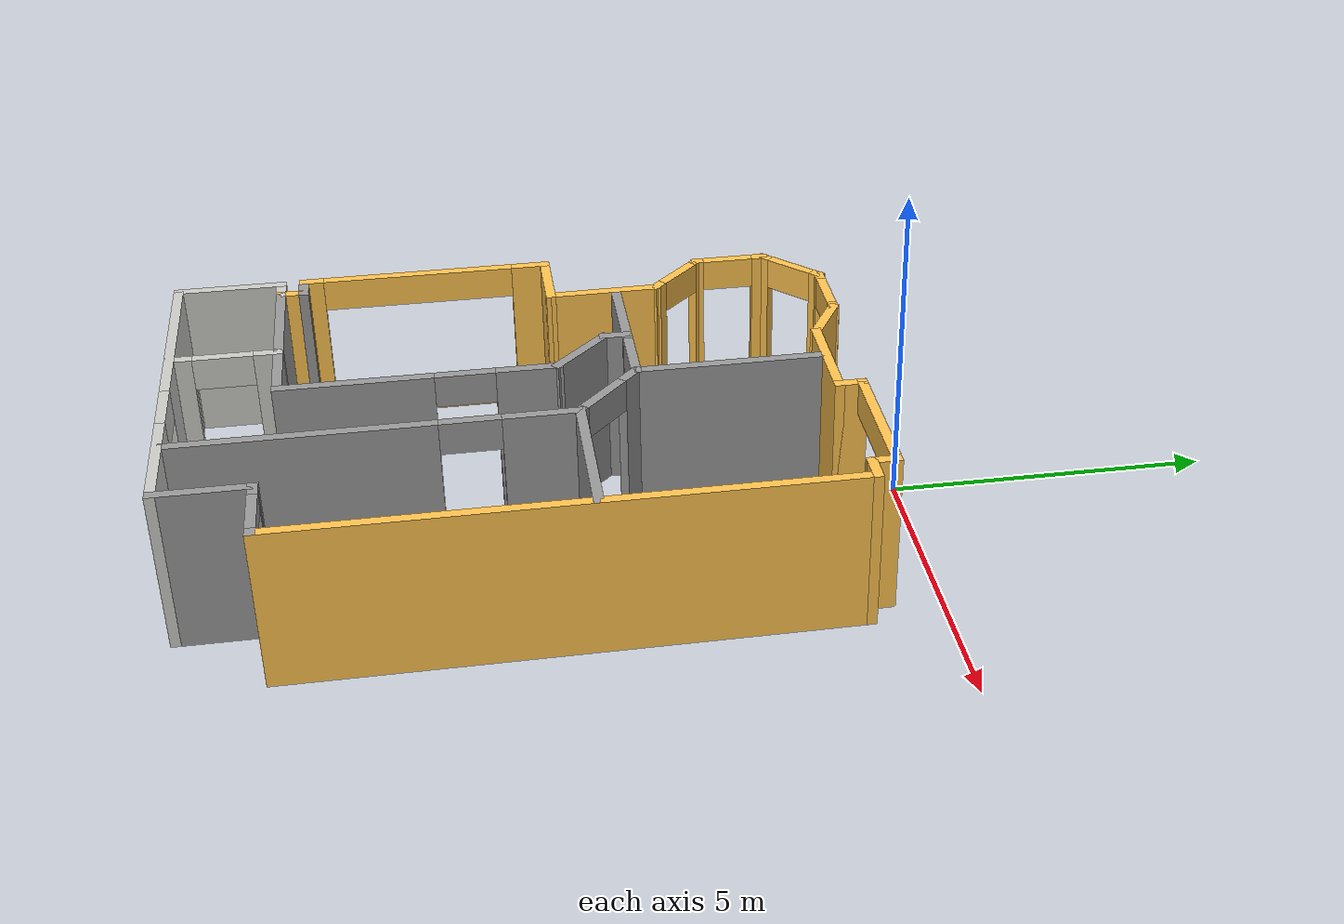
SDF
<?xml version='1.0'?>
<sdf version='1.6'>
  <model name='Building'>
    <pose frame=''>-0.265 -5.74197 0 0 -0 0</pose>
    <link name='Wall_0'>
      <pose frame=''>-0.54 -5.07803 0 0 -0 0</pose>
      <visual name='Wall_0_Visual_0'>
        <pose frame=''>-1.40972 0 1.25 0 -0 0</pose>
        <geometry>
          <box>
            <size>3.18055 0.15 2.5</size>
          </box>
        </geometry>
        <material>
          <script>
            <uri>file://media/materials/scripts/gazebo.material</uri>
            <name>Gazebo/CeilingTiled</name>
          </script>
          <ambient>1 1 1 1</ambient>
        </material>
        <meta>
          <layer>0</layer>
        </meta>
      </visual>
      <collision name='Wall_0_Collision_0'>
        <geometry>
          <box>
            <size>3.18055 0.15 2.5</size>
          </box>
        </geometry>
        <pose frame=''>-1.40972 0 1.25 0 -0 0</pose>
      </collision>
      <visual name='Wall_0_Visual_1'>
        <pose frame=''>2.04028 0 1.25 0 -0 0</pose>
        <geometry>
          <box>
            <size>1.91945 0.15 2.5</size>
          </box>
        </geometry>
        <material>
          <script>
            <uri>file://media/materials/scripts/gazebo.material</uri>
            <name>Gazebo/CeilingTiled</name>
          </script>
          <ambient>1 1 1 1</ambient>
        </material>
        <meta>
          <layer>0</layer>
        </meta>
      </visual>
      <collision name='Wall_0_Collision_1'>
        <geometry>
          <box>
            <size>1.91945 0.15 2.5</size>
          </box>
        </geometry>
        <pose frame=''>2.04028 0 1.25 0 -0 0</pose>
      </collision>
      <visual name='Wall_0_Visual_2'>
        <pose frame=''>0.630554 0 2.25 0 -0 0</pose>
        <geometry>
          <box>
            <size>0.9 0.15 0.5</size>
          </box>
        </geometry>
        <material>
          <script>
            <uri>file://media/materials/scripts/gazebo.material</uri>
            <name>Gazebo/CeilingTiled</name>
          </script>
          <ambient>1 1 1 1</ambient>
        </material>
        <meta>
          <layer>0</layer>
        </meta>
      </visual>
      <collision name='Wall_0_Collision_2'>
        <geometry>
          <box>
            <size>0.9 0.15 0.5</size>
          </box>
        </geometry>
        <pose frame=''>0.630554 0 2.25 0 -0 0</pose>
      </collision>
    </link>
    <link name='Wall_1'>
      <collision name='Wall_1_Collision'>
        <geometry>
          <box>
            <size>1.5 0.15 2.5</size>
          </box>
        </geometry>
        <pose frame=''>0 0 1.25 0 -0 0</pose>
      </collision>
      <visual name='Wall_1_Visual'>
        <pose frame=''>0 0 1.25 0 -0 0</pose>
        <geometry>
          <box>
            <size>1.5 0.15 2.5</size>
          </box>
        </geometry>
        <material>
          <script>
            <uri>file://media/materials/scripts/gazebo.material</uri>
            <name>Gazebo/Grey</name>
          </script>
          <ambient>1 1 1 1</ambient>
        </material>
        <meta>
          <layer>0</layer>
        </meta>
      </visual>
      <pose frame=''>2.385 -4.40303 0 0 -0 1.5708</pose>
    </link>
    <link name='Wall_10'>
      <pose frame=''>-1.85112 5.04697 0 0 -0 3.14159</pose>
      <visual name='Wall_10_Visual_0'>
        <pose frame=''>-0.517736 0 1.25 0 -0 0</pose>
        <geometry>
          <box>
            <size>0.214528 0.15 2.5</size>
          </box>
        </geometry>
        <material>
          <script>
            <uri>file://media/materials/scripts/gazebo.material</uri>
            <name>Gazebo/Grey</name>
          </script>
          <ambient>1 0.764706 0.305882 1</ambient>
        </material>
        <meta>
          <layer>0</layer>
        </meta>
      </visual>
      <collision name='Wall_10_Collision_0'>
        <geometry>
          <box>
            <size>0.214528 0.15 2.5</size>
          </box>
        </geometry>
        <pose frame=''>-0.517736 0 1.25 0 -0 0</pose>
      </collision>
      <visual name='Wall_10_Visual_1'>
        <pose frame=''>0.107264 0 0.25 0 -0 0</pose>
        <geometry>
          <box>
            <size>1.03547 0.15 0.5</size>
          </box>
        </geometry>
        <material>
          <script>
            <uri>file://media/materials/scripts/gazebo.material</uri>
            <name>Gazebo/Grey</name>
          </script>
          <ambient>1 0.764706 0.305882 1</ambient>
        </material>
        <meta>
          <layer>0</layer>
        </meta>
      </visual>
      <collision name='Wall_10_Collision_1'>
        <geometry>
          <box>
            <size>1.03547 0.15 0.5</size>
          </box>
        </geometry>
        <pose frame=''>0.107264 0 0.25 0 -0 0</pose>
      </collision>
      <visual name='Wall_10_Visual_2'>
        <pose frame=''>0.507264 0 1.5 0 -0 0</pose>
        <geometry>
          <box>
            <size>0.235472 0.15 2</size>
          </box>
        </geometry>
        <material>
          <script>
            <uri>file://media/materials/scripts/gazebo.material</uri>
            <name>Gazebo/Grey</name>
          </script>
          <ambient>1 0.764706 0.305882 1</ambient>
        </material>
        <meta>
          <layer>0</layer>
        </meta>
      </visual>
      <collision name='Wall_10_Collision_2'>
        <geometry>
          <box>
            <size>0.235472 0.15 2</size>
          </box>
        </geometry>
        <pose frame=''>0.507264 0 1.5 0 -0 0</pose>
      </collision>
      <visual name='Wall_10_Visual_3'>
        <pose frame=''>-0.010472 0 2.25 0 -0 0</pose>
        <geometry>
          <box>
            <size>0.8 0.15 0.5</size>
          </box>
        </geometry>
        <material>
          <script>
            <uri>file://media/materials/scripts/gazebo.material</uri>
            <name>Gazebo/Grey</name>
          </script>
          <ambient>1 0.764706 0.305882 1</ambient>
        </material>
        <meta>
          <layer>0</layer>
        </meta>
      </visual>
      <collision name='Wall_10_Collision_3'>
        <geometry>
          <box>
            <size>0.8 0.15 0.5</size>
          </box>
        </geometry>
        <pose frame=''>-0.010472 0 2.25 0 -0 0</pose>
      </collision>
    </link>
    <link name='Wall_11'>
      <pose frame=''>-2.79003 4.65806 0 0 0 -2.35619</pose>
      <visual name='Wall_11_Visual_0'>
        <pose frame=''>-0.516833 0 1.25 0 -0 0</pose>
        <geometry>
          <box>
            <size>0.216334 0.15 2.5</size>
          </box>
        </geometry>
        <material>
          <script>
            <uri>file://media/materials/scripts/gazebo.material</uri>
            <name>Gazebo/Grey</name>
          </script>
          <ambient>1 0.764706 0.305882 1</ambient>
        </material>
        <meta>
          <layer>0</layer>
        </meta>
      </visual>
      <collision name='Wall_11_Collision_0'>
        <geometry>
          <box>
            <size>0.216334 0.15 2.5</size>
          </box>
        </geometry>
        <pose frame=''>-0.516833 0 1.25 0 -0 0</pose>
      </collision>
      <visual name='Wall_11_Visual_1'>
        <pose frame=''>0.108167 0 0.25 0 -0 0</pose>
        <geometry>
          <box>
            <size>1.03367 0.15 0.5</size>
          </box>
        </geometry>
        <material>
          <script>
            <uri>file://media/materials/scripts/gazebo.material</uri>
            <name>Gazebo/Grey</name>
          </script>
          <ambient>1 0.764706 0.305882 1</ambient>
        </material>
        <meta>
          <layer>0</layer>
        </meta>
      </visual>
      <collision name='Wall_11_Collision_1'>
        <geometry>
          <box>
            <size>1.03367 0.15 0.5</size>
          </box>
        </geometry>
        <pose frame=''>0.108167 0 0.25 0 -0 0</pose>
      </collision>
      <visual name='Wall_11_Visual_2'>
        <pose frame=''>0.508167 0 1.5 0 -0 0</pose>
        <geometry>
          <box>
            <size>0.233666 0.15 2</size>
          </box>
        </geometry>
        <material>
          <script>
            <uri>file://media/materials/scripts/gazebo.material</uri>
            <name>Gazebo/Grey</name>
          </script>
          <ambient>1 0.764706 0.305882 1</ambient>
        </material>
        <meta>
          <layer>0</layer>
        </meta>
      </visual>
      <collision name='Wall_11_Collision_2'>
        <geometry>
          <box>
            <size>0.233666 0.15 2</size>
          </box>
        </geometry>
        <pose frame=''>0.508167 0 1.5 0 -0 0</pose>
      </collision>
      <visual name='Wall_11_Visual_3'>
        <pose frame=''>-0.008666 0 2.25 0 -0 0</pose>
        <geometry>
          <box>
            <size>0.8 0.15 0.5</size>
          </box>
        </geometry>
        <material>
          <script>
            <uri>file://media/materials/scripts/gazebo.material</uri>
            <name>Gazebo/Grey</name>
          </script>
          <ambient>1 0.764706 0.305882 1</ambient>
        </material>
        <meta>
          <layer>0</layer>
        </meta>
      </visual>
      <collision name='Wall_11_Collision_3'>
        <geometry>
          <box>
            <size>0.8 0.15 0.5</size>
          </box>
        </geometry>
        <pose frame=''>-0.008666 0 2.25 0 -0 0</pose>
      </collision>
    </link>
    <link name='Wall_12'>
      <pose frame=''>-3.17894 3.71915 0 0 0 -1.5708</pose>
      <visual name='Wall_12_Visual_0'>
        <pose frame=''>-0.493695 0 1.25 0 -0 0</pose>
        <geometry>
          <box>
            <size>0.262609 0.15 2.5</size>
          </box>
        </geometry>
        <material>
          <script>
            <uri>file://media/materials/scripts/gazebo.material</uri>
            <name>Gazebo/Grey</name>
          </script>
          <ambient>1 0.764706 0.305882 1</ambient>
        </material>
        <meta>
          <layer>0</layer>
        </meta>
      </visual>
      <collision name='Wall_12_Collision_0'>
        <geometry>
          <box>
            <size>0.262609 0.15 2.5</size>
          </box>
        </geometry>
        <pose frame=''>-0.493695 0 1.25 0 -0 0</pose>
      </collision>
      <visual name='Wall_12_Visual_1'>
        <pose frame=''>0.131305 0 0.25 0 -0 0</pose>
        <geometry>
          <box>
            <size>0.987391 0.15 0.5</size>
          </box>
        </geometry>
        <material>
          <script>
            <uri>file://media/materials/scripts/gazebo.material</uri>
            <name>Gazebo/Grey</name>
          </script>
          <ambient>1 0.764706 0.305882 1</ambient>
        </material>
        <meta>
          <layer>0</layer>
        </meta>
      </visual>
      <collision name='Wall_12_Collision_1'>
        <geometry>
          <box>
            <size>0.987391 0.15 0.5</size>
          </box>
        </geometry>
        <pose frame=''>0.131305 0 0.25 0 -0 0</pose>
      </collision>
      <visual name='Wall_12_Visual_2'>
        <pose frame=''>0.531305 0 1.5 0 -0 0</pose>
        <geometry>
          <box>
            <size>0.187391 0.15 2</size>
          </box>
        </geometry>
        <material>
          <script>
            <uri>file://media/materials/scripts/gazebo.material</uri>
            <name>Gazebo/Grey</name>
          </script>
          <ambient>1 0.764706 0.305882 1</ambient>
        </material>
        <meta>
          <layer>0</layer>
        </meta>
      </visual>
      <collision name='Wall_12_Collision_2'>
        <geometry>
          <box>
            <size>0.187391 0.15 2</size>
          </box>
        </geometry>
        <pose frame=''>0.531305 0 1.5 0 -0 0</pose>
      </collision>
      <visual name='Wall_12_Visual_3'>
        <pose frame=''>0.037609 0 2.25 0 -0 0</pose>
        <geometry>
          <box>
            <size>0.8 0.15 0.5</size>
          </box>
        </geometry>
        <material>
          <script>
            <uri>file://media/materials/scripts/gazebo.material</uri>
            <name>Gazebo/Grey</name>
          </script>
          <ambient>1 0.764706 0.305882 1</ambient>
        </material>
        <meta>
          <layer>0</layer>
        </meta>
      </visual>
      <collision name='Wall_12_Collision_3'>
        <geometry>
          <box>
            <size>0.8 0.15 0.5</size>
          </box>
        </geometry>
        <pose frame=''>0.037609 0 2.25 0 -0 0</pose>
      </collision>
    </link>
    <link name='Wall_13'>
      <pose frame=''>-2.79003 2.78024 0 0 0 -0.785398</pose>
      <visual name='Wall_13_Visual_0'>
        <pose frame=''>-0.532603 0 1.25 0 -0 0</pose>
        <geometry>
          <box>
            <size>0.184794 0.15 2.5</size>
          </box>
        </geometry>
        <material>
          <script>
            <uri>file://media/materials/scripts/gazebo.material</uri>
            <name>Gazebo/Grey</name>
          </script>
          <ambient>1 0.764706 0.305882 1</ambient>
        </material>
        <meta>
          <layer>0</layer>
        </meta>
      </visual>
      <collision name='Wall_13_Collision_0'>
        <geometry>
          <box>
            <size>0.184794 0.15 2.5</size>
          </box>
        </geometry>
        <pose frame=''>-0.532603 0 1.25 0 -0 0</pose>
      </collision>
      <visual name='Wall_13_Visual_1'>
        <pose frame=''>0.092397 0 0.25 0 -0 0</pose>
        <geometry>
          <box>
            <size>1.06521 0.15 0.5</size>
          </box>
        </geometry>
        <material>
          <script>
            <uri>file://media/materials/scripts/gazebo.material</uri>
            <name>Gazebo/Grey</name>
          </script>
          <ambient>1 0.764706 0.305882 1</ambient>
        </material>
        <meta>
          <layer>0</layer>
        </meta>
      </visual>
      <collision name='Wall_13_Collision_1'>
        <geometry>
          <box>
            <size>1.06521 0.15 0.5</size>
          </box>
        </geometry>
        <pose frame=''>0.092397 0 0.25 0 -0 0</pose>
      </collision>
      <visual name='Wall_13_Visual_2'>
        <pose frame=''>0.492397 0 1.5 0 -0 0</pose>
        <geometry>
          <box>
            <size>0.265206 0.15 2</size>
          </box>
        </geometry>
        <material>
          <script>
            <uri>file://media/materials/scripts/gazebo.material</uri>
            <name>Gazebo/Grey</name>
          </script>
          <ambient>1 0.764706 0.305882 1</ambient>
        </material>
        <meta>
          <layer>0</layer>
        </meta>
      </visual>
      <collision name='Wall_13_Collision_2'>
        <geometry>
          <box>
            <size>0.265206 0.15 2</size>
          </box>
        </geometry>
        <pose frame=''>0.492397 0 1.5 0 -0 0</pose>
      </collision>
      <visual name='Wall_13_Visual_3'>
        <pose frame=''>-0.040206 0 2.25 0 -0 0</pose>
        <geometry>
          <box>
            <size>0.8 0.15 0.5</size>
          </box>
        </geometry>
        <material>
          <script>
            <uri>file://media/materials/scripts/gazebo.material</uri>
            <name>Gazebo/Grey</name>
          </script>
          <ambient>1 0.764706 0.305882 1</ambient>
        </material>
        <meta>
          <layer>0</layer>
        </meta>
      </visual>
      <collision name='Wall_13_Collision_3'>
        <geometry>
          <box>
            <size>0.8 0.15 0.5</size>
          </box>
        </geometry>
        <pose frame=''>-0.040206 0 2.25 0 -0 0</pose>
      </collision>
    </link>
    <link name='Wall_14'>
      <collision name='Wall_14_Collision'>
        <geometry>
          <box>
            <size>1.81944 0.15 2.5</size>
          </box>
        </geometry>
        <pose frame=''>0 0 1.25 0 -0 0</pose>
      </collision>
      <visual name='Wall_14_Visual'>
        <pose frame=''>0 0 1.25 0 -0 0</pose>
        <geometry>
          <box>
            <size>1.81944 0.15 2.5</size>
          </box>
        </geometry>
        <material>
          <script>
            <uri>file://media/materials/scripts/gazebo.material</uri>
            <name>Gazebo/Grey</name>
          </script>
          <ambient>1 0.764706 0.305882 1</ambient>
        </material>
        <meta>
          <layer>0</layer>
        </meta>
      </visual>
      <pose frame=''>-2.39306 1.55665 0 0 0 -1.56114</pose>
    </link>
    <link name='Wall_16'>
      <collision name='Wall_16_Collision'>
        <geometry>
          <box>
            <size>1.75 0.15 2.5</size>
          </box>
        </geometry>
        <pose frame=''>0 0 1.25 0 -0 0</pose>
      </collision>
      <visual name='Wall_16_Visual'>
        <pose frame=''>0 0 1.25 0 -0 0</pose>
        <geometry>
          <box>
            <size>1.75 0.15 2.5</size>
          </box>
        </geometry>
        <material>
          <script>
            <uri>file://media/materials/scripts/gazebo.material</uri>
            <name>Gazebo/CeilingTiled</name>
          </script>
          <ambient>1 0.764706 0.305882 1</ambient>
        </material>
        <meta>
          <layer>0</layer>
        </meta>
      </visual>
      <pose frame=''>-3.465 -4.27803 0 0 -0 1.5708</pose>
    </link>
    <link name='Wall_17'>
      <collision name='Wall_17_Collision'>
        <geometry>
          <box>
            <size>0.5 0.15 2.5</size>
          </box>
        </geometry>
        <pose frame=''>0 0 1.25 0 -0 0</pose>
      </collision>
      <visual name='Wall_17_Visual'>
        <pose frame=''>0 0 1.25 0 -0 0</pose>
        <geometry>
          <box>
            <size>0.5 0.15 2.5</size>
          </box>
        </geometry>
        <material>
          <script>
            <uri>file://media/materials/scripts/gazebo.material</uri>
            <name>Gazebo/CeilingTiled</name>
          </script>
          <ambient>1 0.764706 0.305882 1</ambient>
        </material>
        <meta>
          <layer>0</layer>
        </meta>
      </visual>
      <pose frame=''>-3.29 -3.47803 0 0 -0 0</pose>
    </link>
    <link name='Wall_18'>
      <collision name='Wall_18_Collision'>
        <geometry>
          <box>
            <size>0.5 0.15 2.5</size>
          </box>
        </geometry>
        <pose frame=''>0 0 1.25 0 -0 0</pose>
      </collision>
      <visual name='Wall_18_Visual'>
        <pose frame=''>0 0 1.25 0 -0 0</pose>
        <geometry>
          <box>
            <size>0.5 0.15 2.5</size>
          </box>
        </geometry>
        <material>
          <script>
            <uri>file://media/materials/scripts/gazebo.material</uri>
            <name>Gazebo/Grey</name>
          </script>
          <ambient>1 0.764706 0.305882 1</ambient>
        </material>
        <meta>
          <layer>0</layer>
        </meta>
      </visual>
      <pose frame=''>-3.115 -3.30303 0 0 -0 1.5708</pose>
    </link>
    <link name='Wall_19'>
      <collision name='Wall_19_Collision'>
        <geometry>
          <box>
            <size>0.5 0.15 2.5</size>
          </box>
        </geometry>
        <pose frame=''>0 0 1.25 0 -0 0</pose>
      </collision>
      <visual name='Wall_19_Visual'>
        <pose frame=''>0 0 1.25 0 -0 0</pose>
        <geometry>
          <box>
            <size>0.5 0.15 2.5</size>
          </box>
        </geometry>
        <material>
          <script>
            <uri>file://media/materials/scripts/gazebo.material</uri>
            <name>Gazebo/Grey</name>
          </script>
          <ambient>1 1 1 1</ambient>
        </material>
        <meta>
          <layer>0</layer>
        </meta>
      </visual>
      <pose frame=''>-3.29 -3.12803 0 0 -0 3.14159</pose>
    </link>
    <link name='Wall_2'>
      <pose frame=''>2.935 -3.72803 0 0 -0 0</pose>
      <visual name='Wall_2_Visual_0'>
        <pose frame=''>-0.486696 0 1.25 0 -0 0</pose>
        <geometry>
          <box>
            <size>0.276608 0.15 2.5</size>
          </box>
        </geometry>
        <material>
          <script>
            <uri>file://media/materials/scripts/gazebo.material</uri>
            <name>Gazebo/Grey</name>
          </script>
          <ambient>1 1 1 1</ambient>
        </material>
        <meta>
          <layer>0</layer>
        </meta>
      </visual>
      <collision name='Wall_2_Collision_0'>
        <geometry>
          <box>
            <size>0.276608 0.15 2.5</size>
          </box>
        </geometry>
        <pose frame=''>-0.486696 0 1.25 0 -0 0</pose>
      </collision>
      <visual name='Wall_2_Visual_1'>
        <pose frame=''>0.138304 0 0.375 0 -0 0</pose>
        <geometry>
          <box>
            <size>0.973392 0.15 0.75</size>
          </box>
        </geometry>
        <material>
          <script>
            <uri>file://media/materials/scripts/gazebo.material</uri>
            <name>Gazebo/Grey</name>
          </script>
          <ambient>1 1 1 1</ambient>
        </material>
        <meta>
          <layer>0</layer>
        </meta>
      </visual>
      <collision name='Wall_2_Collision_1'>
        <geometry>
          <box>
            <size>0.973392 0.15 0.75</size>
          </box>
        </geometry>
        <pose frame=''>0.138304 0 0.375 0 -0 0</pose>
      </collision>
      <visual name='Wall_2_Visual_2'>
        <pose frame=''>0.538304 0 1.625 0 -0 0</pose>
        <geometry>
          <box>
            <size>0.173392 0.15 1.75</size>
          </box>
        </geometry>
        <material>
          <script>
            <uri>file://media/materials/scripts/gazebo.material</uri>
            <name>Gazebo/Grey</name>
          </script>
          <ambient>1 1 1 1</ambient>
        </material>
        <meta>
          <layer>0</layer>
        </meta>
      </visual>
      <collision name='Wall_2_Collision_2'>
        <geometry>
          <box>
            <size>0.173392 0.15 1.75</size>
          </box>
        </geometry>
        <pose frame=''>0.538304 0 1.625 0 -0 0</pose>
      </collision>
      <visual name='Wall_2_Visual_3'>
        <pose frame=''>0.051608 0 2.375 0 -0 0</pose>
        <geometry>
          <box>
            <size>0.8 0.15 0.25</size>
          </box>
        </geometry>
        <material>
          <script>
            <uri>file://media/materials/scripts/gazebo.material</uri>
            <name>Gazebo/Grey</name>
          </script>
          <ambient>1 1 1 1</ambient>
        </material>
        <meta>
          <layer>0</layer>
        </meta>
      </visual>
      <collision name='Wall_2_Collision_3'>
        <geometry>
          <box>
            <size>0.8 0.15 0.25</size>
          </box>
        </geometry>
        <pose frame=''>0.051608 0 2.375 0 -0 0</pose>
      </collision>
    </link>
    <link name='Wall_20'>
      <pose frame=''>-3.485 -1.20303 0 0 -0 1.5708</pose>
      <visual name='Wall_20_Visual_0'>
        <pose frame=''>-1.80879 0 1.25 0 -0 0</pose>
        <geometry>
          <box>
            <size>0.382416 0.15 2.5</size>
          </box>
        </geometry>
        <material>
          <script>
            <uri>file://media/materials/scripts/gazebo.material</uri>
            <name>Gazebo/Grey</name>
          </script>
          <ambient>1 0.764706 0.305882 1</ambient>
        </material>
        <meta>
          <layer>0</layer>
        </meta>
      </visual>
      <collision name='Wall_20_Collision_0'>
        <geometry>
          <box>
            <size>0.382416 0.15 2.5</size>
          </box>
        </geometry>
        <pose frame=''>-1.80879 0 1.25 0 -0 0</pose>
      </collision>
      <visual name='Wall_20_Visual_1'>
        <pose frame=''>0.191208 0 0.25 0 -0 0</pose>
        <geometry>
          <box>
            <size>3.61758 0.15 0.5</size>
          </box>
        </geometry>
        <material>
          <script>
            <uri>file://media/materials/scripts/gazebo.material</uri>
            <name>Gazebo/Grey</name>
          </script>
          <ambient>1 0.764706 0.305882 1</ambient>
        </material>
        <meta>
          <layer>0</layer>
        </meta>
      </visual>
      <collision name='Wall_20_Collision_1'>
        <geometry>
          <box>
            <size>3.61758 0.15 0.5</size>
          </box>
        </geometry>
        <pose frame=''>0.191208 0 0.25 0 -0 0</pose>
      </collision>
      <visual name='Wall_20_Visual_2'>
        <pose frame=''>1.69121 0 1.5 0 -0 0</pose>
        <geometry>
          <box>
            <size>0.617584 0.15 2</size>
          </box>
        </geometry>
        <material>
          <script>
            <uri>file://media/materials/scripts/gazebo.material</uri>
            <name>Gazebo/Grey</name>
          </script>
          <ambient>1 0.764706 0.305882 1</ambient>
        </material>
        <meta>
          <layer>0</layer>
        </meta>
      </visual>
      <collision name='Wall_20_Collision_2'>
        <geometry>
          <box>
            <size>0.617584 0.15 2</size>
          </box>
        </geometry>
        <pose frame=''>1.69121 0 1.5 0 -0 0</pose>
      </collision>
      <visual name='Wall_20_Visual_3'>
        <pose frame=''>-0.117584 0 2.25 0 -0 0</pose>
        <geometry>
          <box>
            <size>3 0.15 0.5</size>
          </box>
        </geometry>
        <material>
          <script>
            <uri>file://media/materials/scripts/gazebo.material</uri>
            <name>Gazebo/Grey</name>
          </script>
          <ambient>1 0.764706 0.305882 1</ambient>
        </material>
        <meta>
          <layer>0</layer>
        </meta>
      </visual>
      <collision name='Wall_20_Collision_3'>
        <geometry>
          <box>
            <size>3 0.15 0.5</size>
          </box>
        </geometry>
        <pose frame=''>-0.117584 0 2.25 0 -0 0</pose>
      </collision>
    </link>
    <link name='Wall_22'>
      <collision name='Wall_22_Collision'>
        <geometry>
          <box>
            <size>1.25 0.15 2.5</size>
          </box>
        </geometry>
        <pose frame=''>0 0 1.25 0 -0 0</pose>
      </collision>
      <visual name='Wall_22_Visual'>
        <pose frame=''>0 0 1.25 0 -0 0</pose>
        <geometry>
          <box>
            <size>1.25 0.15 2.5</size>
          </box>
        </geometry>
        <material>
          <script>
            <uri>file://media/materials/scripts/gazebo.material</uri>
            <name>Gazebo/Grey</name>
          </script>
          <ambient>1 0.764706 0.305882 1</ambient>
        </material>
        <meta>
          <layer>0</layer>
        </meta>
      </visual>
      <pose frame=''>-2.935 0.721967 0 0 -0 0</pose>
    </link>
    <link name='Wall_26'>
      <collision name='Wall_26_Collision'>
        <geometry>
          <box>
            <size>2 0.15 2.5</size>
          </box>
        </geometry>
        <pose frame=''>0 0 1.25 0 -0 0</pose>
      </collision>
      <visual name='Wall_26_Visual'>
        <pose frame=''>0 0 1.25 0 -0 0</pose>
        <geometry>
          <box>
            <size>2 0.15 2.5</size>
          </box>
        </geometry>
        <material>
          <script>
            <uri>file://media/materials/scripts/gazebo.material</uri>
            <name>Gazebo/Grey</name>
          </script>
          <ambient>1 1 1 1</ambient>
        </material>
        <meta>
          <layer>0</layer>
        </meta>
      </visual>
      <pose frame=''>-2.19 -3.47803 0 0 -0 0</pose>
    </link>
    <link name='Wall_27'>
      <pose frame=''>-1.265 -4.27803 0 0 0 -1.5708</pose>
      <visual name='Wall_27_Visual_0'>
        <pose frame=''>-0.653637 0 1.25 0 -0 0</pose>
        <geometry>
          <box>
            <size>0.442727 0.15 2.5</size>
          </box>
        </geometry>
        <material>
          <script>
            <uri>file://media/materials/scripts/gazebo.material</uri>
            <name>Gazebo/CeilingTiled</name>
          </script>
          <ambient>1 1 1 1</ambient>
        </material>
        <meta>
          <layer>0</layer>
        </meta>
      </visual>
      <collision name='Wall_27_Collision_0'>
        <geometry>
          <box>
            <size>0.442727 0.15 2.5</size>
          </box>
        </geometry>
        <pose frame=''>-0.653637 0 1.25 0 -0 0</pose>
      </collision>
      <visual name='Wall_27_Visual_1'>
        <pose frame=''>0.671363 0 1.25 0 -0 0</pose>
        <geometry>
          <box>
            <size>0.407273 0.15 2.5</size>
          </box>
        </geometry>
        <material>
          <script>
            <uri>file://media/materials/scripts/gazebo.material</uri>
            <name>Gazebo/CeilingTiled</name>
          </script>
          <ambient>1 1 1 1</ambient>
        </material>
        <meta>
          <layer>0</layer>
        </meta>
      </visual>
      <collision name='Wall_27_Collision_1'>
        <geometry>
          <box>
            <size>0.407273 0.15 2.5</size>
          </box>
        </geometry>
        <pose frame=''>0.671363 0 1.25 0 -0 0</pose>
      </collision>
      <visual name='Wall_27_Visual_2'>
        <pose frame=''>0.017727 0 2.25 0 -0 0</pose>
        <geometry>
          <box>
            <size>0.9 0.15 0.5</size>
          </box>
        </geometry>
        <material>
          <script>
            <uri>file://media/materials/scripts/gazebo.material</uri>
            <name>Gazebo/CeilingTiled</name>
          </script>
          <ambient>1 1 1 1</ambient>
        </material>
        <meta>
          <layer>0</layer>
        </meta>
      </visual>
      <collision name='Wall_27_Collision_2'>
        <geometry>
          <box>
            <size>0.9 0.15 0.5</size>
          </box>
        </geometry>
        <pose frame=''>0.017727 0 2.25 0 -0 0</pose>
      </collision>
    </link>
    <link name='Wall_29'>
      <collision name='Wall_29_Collision'>
        <geometry>
          <box>
            <size>1.25 0.15 2.5</size>
          </box>
        </geometry>
        <pose frame=''>0 0 1.25 0 -0 0</pose>
      </collision>
      <visual name='Wall_29_Visual'>
        <pose frame=''>0 0 1.25 0 -0 0</pose>
        <geometry>
          <box>
            <size>1.25 0.15 2.5</size>
          </box>
        </geometry>
        <material>
          <script>
            <uri>file://media/materials/scripts/gazebo.material</uri>
            <name>Gazebo/Grey</name>
          </script>
          <ambient>1 1 1 1</ambient>
        </material>
        <meta>
          <layer>0</layer>
        </meta>
      </visual>
      <pose frame=''>-0.715 -3.47803 0 0 -0 0</pose>
    </link>
    <link name='Wall_3'>
      <collision name='Wall_3_Collision'>
        <geometry>
          <box>
            <size>8.5 0.15 2.5</size>
          </box>
        </geometry>
        <pose frame=''>0 0 1.25 0 -0 0</pose>
      </collision>
      <visual name='Wall_3_Visual'>
        <pose frame=''>0 0 1.25 0 -0 0</pose>
        <geometry>
          <box>
            <size>8.5 0.15 2.5</size>
          </box>
        </geometry>
        <material>
          <script>
            <uri>file://media/materials/scripts/gazebo.material</uri>
            <name>Gazebo/Grey</name>
          </script>
          <ambient>1 0.764706 0.305882 1</ambient>
        </material>
        <meta>
          <layer>0</layer>
        </meta>
      </visual>
      <pose frame=''>3.485 0.446967 0 0 -0 1.5708</pose>
    </link>
    <link name='Wall_30'>
      <pose frame=''>-0.165 -1.42803 0 0 -0 1.5708</pose>
      <visual name='Wall_30_Visual_0'>
        <pose frame=''>-0.949214 0 1.25 0 -0 0</pose>
        <geometry>
          <box>
            <size>2.35157 0.15 2.5</size>
          </box>
        </geometry>
        <material>
          <script>
            <uri>file://media/materials/scripts/gazebo.material</uri>
            <name>Gazebo/Grey</name>
          </script>
          <ambient>1 1 1 1</ambient>
        </material>
        <meta>
          <layer>0</layer>
        </meta>
      </visual>
      <collision name='Wall_30_Collision_0'>
        <geometry>
          <box>
            <size>2.35157 0.15 2.5</size>
          </box>
        </geometry>
        <pose frame=''>-0.949214 0 1.25 0 -0 0</pose>
      </collision>
      <visual name='Wall_30_Visual_1'>
        <pose frame=''>1.62579 0 1.25 0 -0 0</pose>
        <geometry>
          <box>
            <size>0.998427 0.15 2.5</size>
          </box>
        </geometry>
        <material>
          <script>
            <uri>file://media/materials/scripts/gazebo.material</uri>
            <name>Gazebo/Grey</name>
          </script>
          <ambient>1 1 1 1</ambient>
        </material>
        <meta>
          <layer>0</layer>
        </meta>
      </visual>
      <collision name='Wall_30_Collision_1'>
        <geometry>
          <box>
            <size>0.998427 0.15 2.5</size>
          </box>
        </geometry>
        <pose frame=''>1.62579 0 1.25 0 -0 0</pose>
      </collision>
      <visual name='Wall_30_Visual_2'>
        <pose frame=''>0.676573 0 2.25 0 -0 0</pose>
        <geometry>
          <box>
            <size>0.9 0.15 0.5</size>
          </box>
        </geometry>
        <material>
          <script>
            <uri>file://media/materials/scripts/gazebo.material</uri>
            <name>Gazebo/Grey</name>
          </script>
          <ambient>1 1 1 1</ambient>
        </material>
        <meta>
          <layer>0</layer>
        </meta>
      </visual>
      <collision name='Wall_30_Collision_2'>
        <geometry>
          <box>
            <size>0.9 0.15 0.5</size>
          </box>
        </geometry>
        <pose frame=''>0.676573 0 2.25 0 -0 0</pose>
      </collision>
    </link>
    <link name='Wall_31'>
      <collision name='Wall_31_Collision'>
        <geometry>
          <box>
            <size>1.25 0.15 2.5</size>
          </box>
        </geometry>
        <pose frame=''>0 0 1.25 0 -0 0</pose>
      </collision>
      <visual name='Wall_31_Visual'>
        <pose frame=''>0 0 1.25 0 -0 0</pose>
        <geometry>
          <box>
            <size>1.25 0.15 2.5</size>
          </box>
        </geometry>
        <material>
          <script>
            <uri>file://media/materials/scripts/gazebo.material</uri>
            <name>Gazebo/Grey</name>
          </script>
          <ambient>1 1 1 1</ambient>
        </material>
        <meta>
          <layer>0</layer>
        </meta>
      </visual>
      <pose frame=''>-0.553909 1.01088 0 0 -0 2.35619</pose>
    </link>
    <link name='Wall_32'>
      <collision name='Wall_32_Collision'>
        <geometry>
          <box>
            <size>0.5 0.15 2.5</size>
          </box>
        </geometry>
        <pose frame=''>0 0 1.25 0 -0 0</pose>
      </collision>
      <visual name='Wall_32_Visual'>
        <pose frame=''>0 0 1.25 0 -0 0</pose>
        <geometry>
          <box>
            <size>0.5 0.15 2.5</size>
          </box>
        </geometry>
        <material>
          <script>
            <uri>file://media/materials/scripts/gazebo.material</uri>
            <name>Gazebo/Grey</name>
          </script>
          <ambient>1 1 1 1</ambient>
        </material>
        <meta>
          <layer>0</layer>
        </meta>
      </visual>
      <pose frame=''>-0.942818 1.57479 0 0 -0 1.5708</pose>
    </link>
    <link name='Wall_33'>
      <collision name='Wall_33_Collision'>
        <geometry>
          <box>
            <size>1.5 0.15 2.5</size>
          </box>
        </geometry>
        <pose frame=''>0 0 1.25 0 -0 0</pose>
      </collision>
      <visual name='Wall_33_Visual'>
        <pose frame=''>0 0 1.25 0 -0 0</pose>
        <geometry>
          <box>
            <size>1.5 0.15 2.5</size>
          </box>
        </geometry>
        <material>
          <script>
            <uri>file://media/materials/scripts/gazebo.material</uri>
            <name>Gazebo/Grey</name>
          </script>
          <ambient>1 1 1 1</ambient>
        </material>
        <meta>
          <layer>0</layer>
        </meta>
      </visual>
      <pose frame=''>-1.61782 1.74978 0 0 -0 3.14159</pose>
    </link>
    <link name='Wall_35'>
      <pose frame=''>-0.392818 1.74978 0 0 -0 0</pose>
      <visual name='Wall_35_Visual_0'>
        <pose frame=''>-0.524612 0 1.25 0 -0 0</pose>
        <geometry>
          <box>
            <size>0.200777 0.15 2.5</size>
          </box>
        </geometry>
        <material>
          <script>
            <uri>file://media/materials/scripts/gazebo.material</uri>
            <name>Gazebo/Grey</name>
          </script>
          <ambient>1 1 1 1</ambient>
        </material>
        <meta>
          <layer>0</layer>
        </meta>
      </visual>
      <collision name='Wall_35_Collision_0'>
        <geometry>
          <box>
            <size>0.200777 0.15 2.5</size>
          </box>
        </geometry>
        <pose frame=''>-0.524612 0 1.25 0 -0 0</pose>
      </collision>
      <visual name='Wall_35_Visual_1'>
        <pose frame=''>0.550388 0 1.25 0 -0 0</pose>
        <geometry>
          <box>
            <size>0.149223 0.15 2.5</size>
          </box>
        </geometry>
        <material>
          <script>
            <uri>file://media/materials/scripts/gazebo.material</uri>
            <name>Gazebo/Grey</name>
          </script>
          <ambient>1 1 1 1</ambient>
        </material>
        <meta>
          <layer>0</layer>
        </meta>
      </visual>
      <collision name='Wall_35_Collision_1'>
        <geometry>
          <box>
            <size>0.149223 0.15 2.5</size>
          </box>
        </geometry>
        <pose frame=''>0.550388 0 1.25 0 -0 0</pose>
      </collision>
      <visual name='Wall_35_Visual_2'>
        <pose frame=''>0.025777 0 2.25 0 -0 0</pose>
        <geometry>
          <box>
            <size>0.9 0.15 0.5</size>
          </box>
        </geometry>
        <material>
          <script>
            <uri>file://media/materials/scripts/gazebo.material</uri>
            <name>Gazebo/Grey</name>
          </script>
          <ambient>1 1 1 1</ambient>
        </material>
        <meta>
          <layer>0</layer>
        </meta>
      </visual>
      <collision name='Wall_35_Collision_2'>
        <geometry>
          <box>
            <size>0.9 0.15 0.5</size>
          </box>
        </geometry>
        <pose frame=''>0.025777 0 2.25 0 -0 0</pose>
      </collision>
    </link>
    <link name='Wall_36'>
      <collision name='Wall_36_Collision'>
        <geometry>
          <box>
            <size>3 0.15 2.5</size>
          </box>
        </geometry>
        <pose frame=''>0 0 1.25 0 -0 0</pose>
      </collision>
      <visual name='Wall_36_Visual'>
        <pose frame=''>0 0 1.25 0 -0 0</pose>
        <geometry>
          <box>
            <size>3 0.15 2.5</size>
          </box>
        </geometry>
        <material>
          <script>
            <uri>file://media/materials/scripts/gazebo.material</uri>
            <name>Gazebo/Grey</name>
          </script>
          <ambient>1 1 1 1</ambient>
        </material>
        <meta>
          <layer>0</layer>
        </meta>
      </visual>
      <pose frame=''>0.157182 3.17478 0 0 -0 1.5708</pose>
    </link>
    <link name='Wall_38'>
      <pose frame=''>1.16672 -2.12643 0 0 -0 1.57466</pose>
      <visual name='Wall_38_Visual_0'>
        <pose frame=''>-1.04783 0 1.25 0 -0 0</pose>
        <geometry>
          <box>
            <size>3.93688 0.15 2.5</size>
          </box>
        </geometry>
        <material>
          <script>
            <uri>file://media/materials/scripts/gazebo.material</uri>
            <name>Gazebo/Grey</name>
          </script>
          <ambient>1 1 1 1</ambient>
        </material>
        <meta>
          <layer>0</layer>
        </meta>
      </visual>
      <collision name='Wall_38_Collision_0'>
        <geometry>
          <box>
            <size>3.93688 0.15 2.5</size>
          </box>
        </geometry>
        <pose frame=''>-1.04783 0 1.25 0 -0 0</pose>
      </collision>
      <visual name='Wall_38_Visual_1'>
        <pose frame=''>2.41844 0 1.25 0 -0 0</pose>
        <geometry>
          <box>
            <size>1.19567 0.15 2.5</size>
          </box>
        </geometry>
        <material>
          <script>
            <uri>file://media/materials/scripts/gazebo.material</uri>
            <name>Gazebo/Grey</name>
          </script>
          <ambient>1 1 1 1</ambient>
        </material>
        <meta>
          <layer>0</layer>
        </meta>
      </visual>
      <collision name='Wall_38_Collision_1'>
        <geometry>
          <box>
            <size>1.19567 0.15 2.5</size>
          </box>
        </geometry>
        <pose frame=''>2.41844 0 1.25 0 -0 0</pose>
      </collision>
      <visual name='Wall_38_Visual_2'>
        <pose frame=''>1.37061 0 2.25 0 -0 0</pose>
        <geometry>
          <box>
            <size>0.9 0.15 0.5</size>
          </box>
        </geometry>
        <material>
          <script>
            <uri>file://media/materials/scripts/gazebo.material</uri>
            <name>Gazebo/Grey</name>
          </script>
          <ambient>1 1 1 1</ambient>
        </material>
        <meta>
          <layer>0</layer>
        </meta>
      </visual>
      <collision name='Wall_38_Collision_2'>
        <geometry>
          <box>
            <size>0.9 0.15 0.5</size>
          </box>
        </geometry>
        <pose frame=''>1.37061 0 2.25 0 -0 0</pose>
      </collision>
    </link>
    <link name='Wall_39'>
      <pose frame=''>0.656263 1.2823 0 0 -0 2.38888</pose>
      <visual name='Wall_39_Visual_0'>
        <pose frame=''>-0.666538 0 1.25 0 -0 0</pose>
        <geometry>
          <box>
            <size>0.184579 0.15 2.5</size>
          </box>
        </geometry>
        <material>
          <script>
            <uri>file://media/materials/scripts/gazebo.material</uri>
            <name>Gazebo/Grey</name>
          </script>
          <ambient>1 1 1 1</ambient>
        </material>
        <meta>
          <layer>0</layer>
        </meta>
      </visual>
      <collision name='Wall_39_Collision_0'>
        <geometry>
          <box>
            <size>0.184579 0.15 2.5</size>
          </box>
        </geometry>
        <pose frame=''>-0.666538 0 1.25 0 -0 0</pose>
      </collision>
      <visual name='Wall_39_Visual_1'>
        <pose frame=''>0.542289 0 1.25 0 -0 0</pose>
        <geometry>
          <box>
            <size>0.433076 0.15 2.5</size>
          </box>
        </geometry>
        <material>
          <script>
            <uri>file://media/materials/scripts/gazebo.material</uri>
            <name>Gazebo/Grey</name>
          </script>
          <ambient>1 1 1 1</ambient>
        </material>
        <meta>
          <layer>0</layer>
        </meta>
      </visual>
      <collision name='Wall_39_Collision_1'>
        <geometry>
          <box>
            <size>0.433076 0.15 2.5</size>
          </box>
        </geometry>
        <pose frame=''>0.542289 0 1.25 0 -0 0</pose>
      </collision>
      <visual name='Wall_39_Visual_2'>
        <pose frame=''>-0.124249 0 2.25 0 -0 0</pose>
        <geometry>
          <box>
            <size>0.9 0.15 0.5</size>
          </box>
        </geometry>
        <material>
          <script>
            <uri>file://media/materials/scripts/gazebo.material</uri>
            <name>Gazebo/Grey</name>
          </script>
          <ambient>1 1 1 1</ambient>
        </material>
        <meta>
          <layer>0</layer>
        </meta>
      </visual>
      <collision name='Wall_39_Collision_2'>
        <geometry>
          <box>
            <size>0.9 0.15 0.5</size>
          </box>
        </geometry>
        <pose frame=''>-0.124249 0 2.25 0 -0 0</pose>
      </collision>
    </link>
    <link name='Wall_4'>
      <collision name='Wall_4_Collision'>
        <geometry>
          <box>
            <size>0.5 0.15 2.5</size>
          </box>
        </geometry>
        <pose frame=''>0 0 1.25 0 -0 0</pose>
      </collision>
      <visual name='Wall_4_Visual'>
        <pose frame=''>0 0 1.25 0 -0 0</pose>
        <geometry>
          <box>
            <size>0.5 0.15 2.5</size>
          </box>
        </geometry>
        <material>
          <script>
            <uri>file://media/materials/scripts/gazebo.material</uri>
            <name>Gazebo/Grey</name>
          </script>
          <ambient>1 0.764706 0.305882 1</ambient>
        </material>
        <meta>
          <layer>0</layer>
        </meta>
      </visual>
      <pose frame=''>3.31 4.62197 0 0 -0 3.14159</pose>
    </link>
    <link name='Wall_41'>
      <collision name='Wall_41_Collision'>
        <geometry>
          <box>
            <size>2.47946 0.15 2.5</size>
          </box>
        </geometry>
        <pose frame=''>0 0 1.25 0 -0 0</pose>
      </collision>
      <visual name='Wall_41_Visual'>
        <pose frame=''>0 0 1.25 0 -0 0</pose>
        <geometry>
          <box>
            <size>2.47946 0.15 2.5</size>
          </box>
        </geometry>
        <material>
          <script>
            <uri>file://media/materials/scripts/gazebo.material</uri>
            <name>Gazebo/Grey</name>
          </script>
          <ambient>1 1 1 1</ambient>
        </material>
        <meta>
          <layer>0</layer>
        </meta>
      </visual>
      <pose frame=''>2.32007 0.817744 0 0 0 -0.000281</pose>
    </link>
    <link name='Wall_5'>
      <collision name='Wall_5_Collision'>
        <geometry>
          <box>
            <size>0.5 0.15 2.5</size>
          </box>
        </geometry>
        <pose frame=''>0 0 1.25 0 -0 0</pose>
      </collision>
      <visual name='Wall_5_Visual'>
        <pose frame=''>0 0 1.25 0 -0 0</pose>
        <geometry>
          <box>
            <size>0.5 0.15 2.5</size>
          </box>
        </geometry>
        <material>
          <script>
            <uri>file://media/materials/scripts/gazebo.material</uri>
            <name>Gazebo/Grey</name>
          </script>
          <ambient>1 0.764706 0.305882 1</ambient>
        </material>
        <meta>
          <layer>0</layer>
        </meta>
      </visual>
      <pose frame=''>3.135 4.79697 0 0 -0 1.5708</pose>
    </link>
    <link name='Wall_6'>
      <pose frame=''>2.085 4.97197 0 0 -0 3.14159</pose>
      <visual name='Wall_6_Visual_0'>
        <pose frame=''>-1.04107 0 1.25 0 -0 0</pose>
        <geometry>
          <box>
            <size>0.167856 0.15 2.5</size>
          </box>
        </geometry>
        <material>
          <script>
            <uri>file://media/materials/scripts/gazebo.material</uri>
            <name>Gazebo/Grey</name>
          </script>
          <ambient>1 0.764706 0.305882 1</ambient>
        </material>
        <meta>
          <layer>0</layer>
        </meta>
      </visual>
      <collision name='Wall_6_Collision_0'>
        <geometry>
          <box>
            <size>0.167856 0.15 2.5</size>
          </box>
        </geometry>
        <pose frame=''>-1.04107 0 1.25 0 -0 0</pose>
      </collision>
      <visual name='Wall_6_Visual_1'>
        <pose frame=''>0.083928 0 0.25 0 -0 0</pose>
        <geometry>
          <box>
            <size>2.08214 0.15 0.5</size>
          </box>
        </geometry>
        <material>
          <script>
            <uri>file://media/materials/scripts/gazebo.material</uri>
            <name>Gazebo/Grey</name>
          </script>
          <ambient>1 0.764706 0.305882 1</ambient>
        </material>
        <meta>
          <layer>0</layer>
        </meta>
      </visual>
      <collision name='Wall_6_Collision_1'>
        <geometry>
          <box>
            <size>2.08214 0.15 0.5</size>
          </box>
        </geometry>
        <pose frame=''>0.083928 0 0.25 0 -0 0</pose>
      </collision>
      <visual name='Wall_6_Visual_2'>
        <pose frame=''>1.08393 0 1.5 0 -0 0</pose>
        <geometry>
          <box>
            <size>0.082144 0.15 2</size>
          </box>
        </geometry>
        <material>
          <script>
            <uri>file://media/materials/scripts/gazebo.material</uri>
            <name>Gazebo/Grey</name>
          </script>
          <ambient>1 0.764706 0.305882 1</ambient>
        </material>
        <meta>
          <layer>0</layer>
        </meta>
      </visual>
      <collision name='Wall_6_Collision_2'>
        <geometry>
          <box>
            <size>0.082144 0.15 2</size>
          </box>
        </geometry>
        <pose frame=''>1.08393 0 1.5 0 -0 0</pose>
      </collision>
      <visual name='Wall_6_Visual_3'>
        <pose frame=''>0.042856 0 2.25 0 -0 0</pose>
        <geometry>
          <box>
            <size>2 0.15 0.5</size>
          </box>
        </geometry>
        <material>
          <script>
            <uri>file://media/materials/scripts/gazebo.material</uri>
            <name>Gazebo/Grey</name>
          </script>
          <ambient>1 0.764706 0.305882 1</ambient>
        </material>
        <meta>
          <layer>0</layer>
        </meta>
      </visual>
      <collision name='Wall_6_Collision_3'>
        <geometry>
          <box>
            <size>2 0.15 0.5</size>
          </box>
        </geometry>
        <pose frame=''>0.042856 0 2.25 0 -0 0</pose>
      </collision>
    </link>
    <link name='Wall_7'>
      <collision name='Wall_7_Collision'>
        <geometry>
          <box>
            <size>0.5 0.15 2.5</size>
          </box>
        </geometry>
        <pose frame=''>0 0 1.25 0 -0 0</pose>
      </collision>
      <visual name='Wall_7_Visual'>
        <pose frame=''>0 0 1.25 0 -0 0</pose>
        <geometry>
          <box>
            <size>0.5 0.15 2.5</size>
          </box>
        </geometry>
        <material>
          <script>
            <uri>file://media/materials/scripts/gazebo.material</uri>
            <name>Gazebo/Grey</name>
          </script>
          <ambient>1 0.764706 0.305882 1</ambient>
        </material>
        <meta>
          <layer>0</layer>
        </meta>
      </visual>
      <pose frame=''>1.035 4.79697 0 0 0 -1.5708</pose>
    </link>
    <link name='Wall_8'>
      <collision name='Wall_8_Collision'>
        <geometry>
          <box>
            <size>1.75 0.15 2.5</size>
          </box>
        </geometry>
        <pose frame=''>0 0 1.25 0 -0 0</pose>
      </collision>
      <visual name='Wall_8_Visual'>
        <pose frame=''>0 0 1.25 0 -0 0</pose>
        <geometry>
          <box>
            <size>1.75 0.15 2.5</size>
          </box>
        </geometry>
        <material>
          <script>
            <uri>file://media/materials/scripts/gazebo.material</uri>
            <name>Gazebo/Grey</name>
          </script>
          <ambient>1 0.764706 0.305882 1</ambient>
        </material>
        <meta>
          <layer>0</layer>
        </meta>
      </visual>
      <pose frame=''>0.235 4.62197 0 0 -0 3.14159</pose>
    </link>
    <link name='Wall_9'>
      <collision name='Wall_9_Collision'>
        <geometry>
          <box>
            <size>1 0.15 2.5</size>
          </box>
        </geometry>
        <pose frame=''>0 0 1.25 0 -0 0</pose>
      </collision>
      <visual name='Wall_9_Visual'>
        <pose frame=''>0 0 1.25 0 -0 0</pose>
        <geometry>
          <box>
            <size>1 0.15 2.5</size>
          </box>
        </geometry>
        <material>
          <script>
            <uri>file://media/materials/scripts/gazebo.material</uri>
            <name>Gazebo/Grey</name>
          </script>
          <ambient>1 0.764706 0.305882 1</ambient>
        </material>
        <meta>
          <layer>0</layer>
        </meta>
      </visual>
      <pose frame=''>-0.933061 4.83447 0 0 -0 2.61799</pose>
    </link>
    <static>1</static>
  </model>
</sdf>
